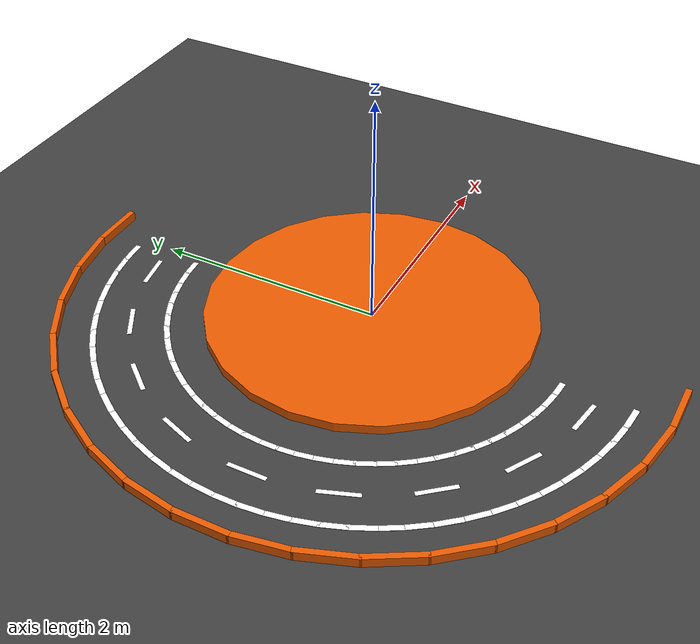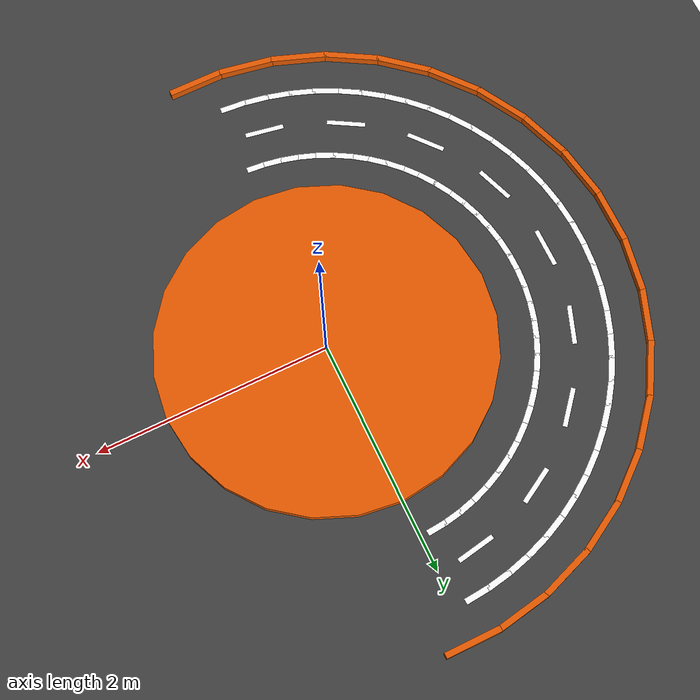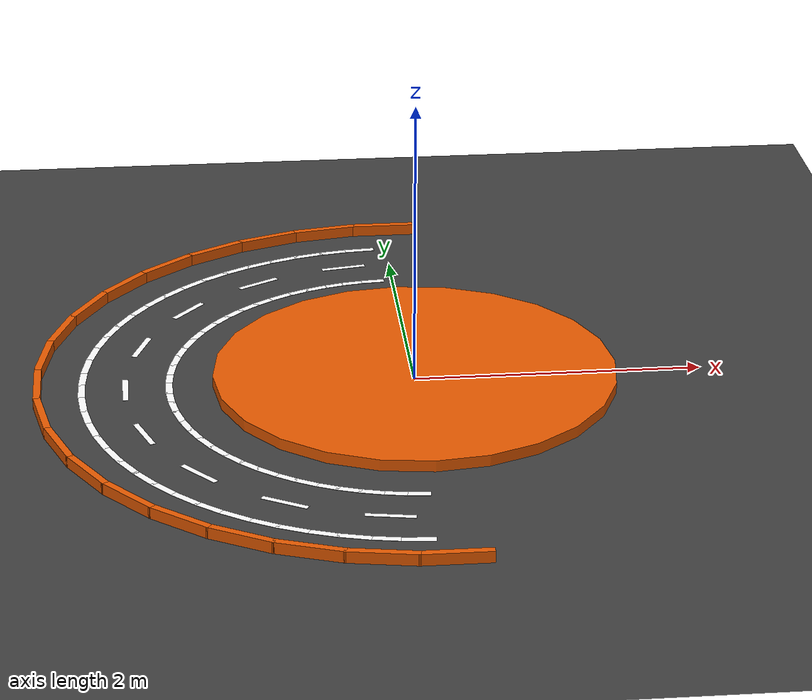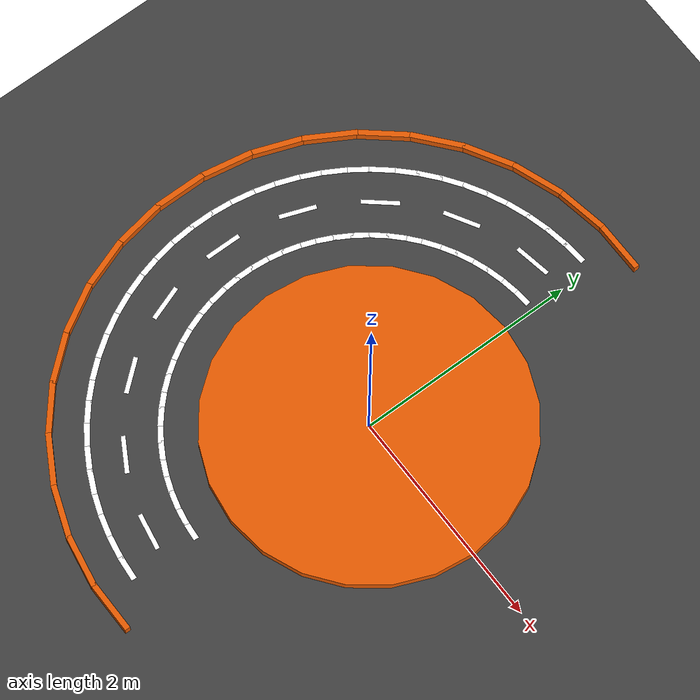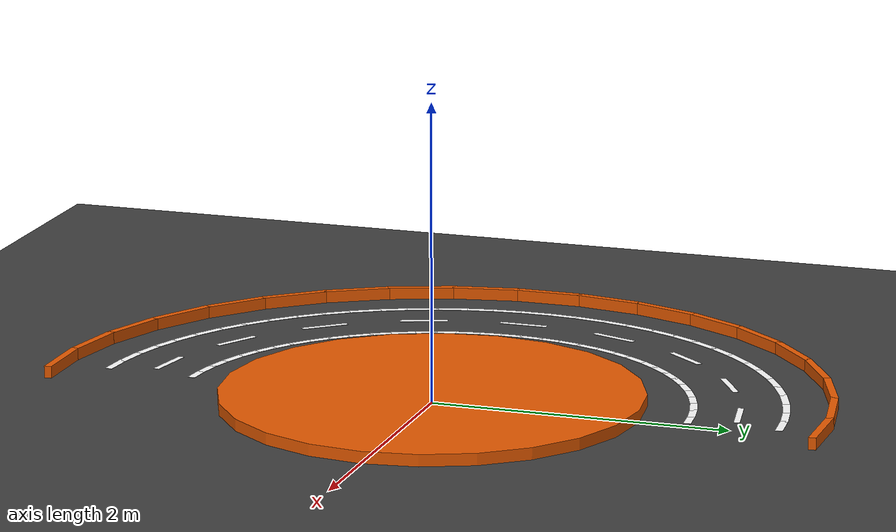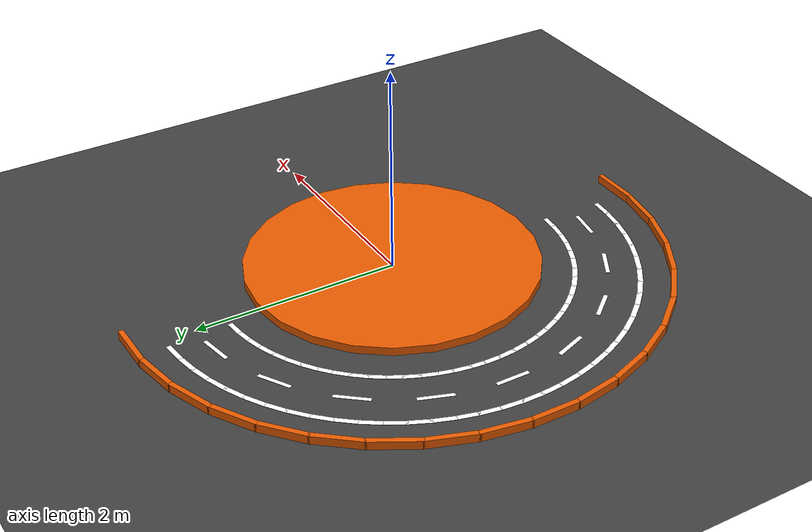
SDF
<sdf version="1.6">
 <world name="qcar_track">
  <model name="ground_plane">
   <static>true</static>
   <link name="link">
    <collision name="collision">
     <geometry><plane><normal>0 0 1</normal><size>100 100</size></plane></geometry>
    </collision>
    <visual name="visual">
     <geometry><plane><normal>0 0 1</normal><size>100 100</size></plane></geometry>
     <material>
      <ambient>0.25 0.25 0.25 1</ambient>
      <diffuse>0.25 0.25 0.25 1</diffuse>
      <specular>0.05 0.05 0.05 1</specular>
     </material>
    </visual>
   </link>
  </model>
  <model name="inner_obstacle">
   <static>true</static>
   <pose>0 0 0.04 0 0 0</pose>
   <link name="link">
    <collision name="c">
     <geometry><cylinder><radius>1.4</radius><length>0.08</length></cylinder></geometry>
    </collision>
    <visual name="v">
     <geometry><cylinder><radius>1.4</radius><length>0.08</length></cylinder></geometry>
     <material><ambient>0.9 0.35 0.0 1</ambient><diffuse>0.9 0.35 0.0 1</diffuse></material>
    </visual>
   </link>
  </model>
  <model name="outer_09">
   <static>true</static>
   <pose>0.0000 2.6000 0.0400 0 0 1.5708</pose>
   <link name="link">
    <collision name="c"><geometry><box><size>0.05 0.477 0.08</size></box></geometry></collision>
    <visual name="v">
     <geometry><box><size>0.05 0.474 0.08</size></box></geometry>
     <material><ambient>0.9 0.35 0.0 1</ambient><diffuse>0.9 0.35 0.0 1</diffuse></material>
    </visual>
   </link>
  </model>
  <model name="outer_10">
   <static>true</static>
   <pose>-0.4515 2.5605 0.0400 0 0 1.7453</pose>
   <link name="link">
    <collision name="c"><geometry><box><size>0.05 0.477 0.08</size></box></geometry></collision>
    <visual name="v">
     <geometry><box><size>0.05 0.474 0.08</size></box></geometry>
     <material><ambient>0.9 0.35 0.0 1</ambient><diffuse>0.9 0.35 0.0 1</diffuse></material>
    </visual>
   </link>
  </model>
  <model name="outer_11">
   <static>true</static>
   <pose>-0.8893 2.4432 0.0400 0 0 1.9199</pose>
   <link name="link">
    <collision name="c"><geometry><box><size>0.05 0.477 0.08</size></box></geometry></collision>
    <visual name="v">
     <geometry><box><size>0.05 0.474 0.08</size></box></geometry>
     <material><ambient>0.9 0.35 0.0 1</ambient><diffuse>0.9 0.35 0.0 1</diffuse></material>
    </visual>
   </link>
  </model>
  <model name="outer_12">
   <static>true</static>
   <pose>-1.3000 2.2517 0.0400 0 0 2.0944</pose>
   <link name="link">
    <collision name="c"><geometry><box><size>0.05 0.477 0.08</size></box></geometry></collision>
    <visual name="v">
     <geometry><box><size>0.05 0.474 0.08</size></box></geometry>
     <material><ambient>0.9 0.35 0.0 1</ambient><diffuse>0.9 0.35 0.0 1</diffuse></material>
    </visual>
   </link>
  </model>
  <model name="outer_13">
   <static>true</static>
   <pose>-1.6712 1.9917 0.0400 0 0 2.2689</pose>
   <link name="link">
    <collision name="c"><geometry><box><size>0.05 0.477 0.08</size></box></geometry></collision>
    <visual name="v">
     <geometry><box><size>0.05 0.474 0.08</size></box></geometry>
     <material><ambient>0.9 0.35 0.0 1</ambient><diffuse>0.9 0.35 0.0 1</diffuse></material>
    </visual>
   </link>
  </model>
  <model name="outer_14">
   <static>true</static>
   <pose>-1.9917 1.6712 0.0400 0 0 2.4435</pose>
   <link name="link">
    <collision name="c"><geometry><box><size>0.05 0.477 0.08</size></box></geometry></collision>
    <visual name="v">
     <geometry><box><size>0.05 0.474 0.08</size></box></geometry>
     <material><ambient>0.9 0.35 0.0 1</ambient><diffuse>0.9 0.35 0.0 1</diffuse></material>
    </visual>
   </link>
  </model>
  <model name="outer_15">
   <static>true</static>
   <pose>-2.2517 1.3000 0.0400 0 0 2.6180</pose>
   <link name="link">
    <collision name="c"><geometry><box><size>0.05 0.477 0.08</size></box></geometry></collision>
    <visual name="v">
     <geometry><box><size>0.05 0.474 0.08</size></box></geometry>
     <material><ambient>0.9 0.35 0.0 1</ambient><diffuse>0.9 0.35 0.0 1</diffuse></material>
    </visual>
   </link>
  </model>
  <model name="outer_16">
   <static>true</static>
   <pose>-2.4432 0.8893 0.0400 0 0 2.7925</pose>
   <link name="link">
    <collision name="c"><geometry><box><size>0.05 0.477 0.08</size></box></geometry></collision>
    <visual name="v">
     <geometry><box><size>0.05 0.474 0.08</size></box></geometry>
     <material><ambient>0.9 0.35 0.0 1</ambient><diffuse>0.9 0.35 0.0 1</diffuse></material>
    </visual>
   </link>
  </model>
  <model name="outer_17">
   <static>true</static>
   <pose>-2.5605 0.4515 0.0400 0 0 2.9671</pose>
   <link name="link">
    <collision name="c"><geometry><box><size>0.05 0.477 0.08</size></box></geometry></collision>
    <visual name="v">
     <geometry><box><size>0.05 0.474 0.08</size></box></geometry>
     <material><ambient>0.9 0.35 0.0 1</ambient><diffuse>0.9 0.35 0.0 1</diffuse></material>
    </visual>
   </link>
  </model>
  <model name="outer_18">
   <static>true</static>
   <pose>-2.6000 0.0000 0.0400 0 0 3.1416</pose>
   <link name="link">
    <collision name="c"><geometry><box><size>0.05 0.477 0.08</size></box></geometry></collision>
    <visual name="v">
     <geometry><box><size>0.05 0.474 0.08</size></box></geometry>
     <material><ambient>0.9 0.35 0.0 1</ambient><diffuse>0.9 0.35 0.0 1</diffuse></material>
    </visual>
   </link>
  </model>
  <model name="outer_19">
   <static>true</static>
   <pose>-2.5605 -0.4515 0.0400 0 0 3.3161</pose>
   <link name="link">
    <collision name="c"><geometry><box><size>0.05 0.477 0.08</size></box></geometry></collision>
    <visual name="v">
     <geometry><box><size>0.05 0.474 0.08</size></box></geometry>
     <material><ambient>0.9 0.35 0.0 1</ambient><diffuse>0.9 0.35 0.0 1</diffuse></material>
    </visual>
   </link>
  </model>
  <model name="outer_20">
   <static>true</static>
   <pose>-2.4432 -0.8893 0.0400 0 0 3.4907</pose>
   <link name="link">
    <collision name="c"><geometry><box><size>0.05 0.477 0.08</size></box></geometry></collision>
    <visual name="v">
     <geometry><box><size>0.05 0.474 0.08</size></box></geometry>
     <material><ambient>0.9 0.35 0.0 1</ambient><diffuse>0.9 0.35 0.0 1</diffuse></material>
    </visual>
   </link>
  </model>
  <model name="outer_21">
   <static>true</static>
   <pose>-2.2517 -1.3000 0.0400 0 0 3.6652</pose>
   <link name="link">
    <collision name="c"><geometry><box><size>0.05 0.477 0.08</size></box></geometry></collision>
    <visual name="v">
     <geometry><box><size>0.05 0.474 0.08</size></box></geometry>
     <material><ambient>0.9 0.35 0.0 1</ambient><diffuse>0.9 0.35 0.0 1</diffuse></material>
    </visual>
   </link>
  </model>
  <model name="outer_22">
   <static>true</static>
   <pose>-1.9917 -1.6712 0.0400 0 0 3.8397</pose>
   <link name="link">
    <collision name="c"><geometry><box><size>0.05 0.477 0.08</size></box></geometry></collision>
    <visual name="v">
     <geometry><box><size>0.05 0.474 0.08</size></box></geometry>
     <material><ambient>0.9 0.35 0.0 1</ambient><diffuse>0.9 0.35 0.0 1</diffuse></material>
    </visual>
   </link>
  </model>
  <model name="outer_23">
   <static>true</static>
   <pose>-1.6712 -1.9917 0.0400 0 0 4.0143</pose>
   <link name="link">
    <collision name="c"><geometry><box><size>0.05 0.477 0.08</size></box></geometry></collision>
    <visual name="v">
     <geometry><box><size>0.05 0.474 0.08</size></box></geometry>
     <material><ambient>0.9 0.35 0.0 1</ambient><diffuse>0.9 0.35 0.0 1</diffuse></material>
    </visual>
   </link>
  </model>
  <model name="outer_24">
   <static>true</static>
   <pose>-1.3000 -2.2517 0.0400 0 0 4.1888</pose>
   <link name="link">
    <collision name="c"><geometry><box><size>0.05 0.477 0.08</size></box></geometry></collision>
    <visual name="v">
     <geometry><box><size>0.05 0.474 0.08</size></box></geometry>
     <material><ambient>0.9 0.35 0.0 1</ambient><diffuse>0.9 0.35 0.0 1</diffuse></material>
    </visual>
   </link>
  </model>
  <model name="outer_25">
   <static>true</static>
   <pose>-0.8893 -2.4432 0.0400 0 0 4.3633</pose>
   <link name="link">
    <collision name="c"><geometry><box><size>0.05 0.477 0.08</size></box></geometry></collision>
    <visual name="v">
     <geometry><box><size>0.05 0.474 0.08</size></box></geometry>
     <material><ambient>0.9 0.35 0.0 1</ambient><diffuse>0.9 0.35 0.0 1</diffuse></material>
    </visual>
   </link>
  </model>
  <model name="outer_26">
   <static>true</static>
   <pose>-0.4515 -2.5605 0.0400 0 0 4.5379</pose>
   <link name="link">
    <collision name="c"><geometry><box><size>0.05 0.477 0.08</size></box></geometry></collision>
    <visual name="v">
     <geometry><box><size>0.05 0.474 0.08</size></box></geometry>
     <material><ambient>0.9 0.35 0.0 1</ambient><diffuse>0.9 0.35 0.0 1</diffuse></material>
    </visual>
   </link>
  </model>
  <model name="outer_27">
   <static>true</static>
   <pose>-0.0000 -2.6000 0.0400 0 0 4.7124</pose>
   <link name="link">
    <collision name="c"><geometry><box><size>0.05 0.477 0.08</size></box></geometry></collision>
    <visual name="v">
     <geometry><box><size>0.05 0.474 0.08</size></box></geometry>
     <material><ambient>0.9 0.35 0.0 1</ambient><diffuse>0.9 0.35 0.0 1</diffuse></material>
    </visual>
   </link>
  </model>
  <model name="left_line_19">
   <static>true</static>
   <pose>-0.1482 1.6935 0.0020 0 0 1.6581</pose>
   <link name="link">
    <visual name="v">
     <geometry><box><size>0.05 0.168 0.002</size></box></geometry>
     <material><ambient>1 1 1 1</ambient><diffuse>1 1 1 1</diffuse></material>
    </visual>
   </link>
  </model>
  <model name="left_line_20">
   <static>true</static>
   <pose>-0.2952 1.6742 0.0020 0 0 1.7453</pose>
   <link name="link">
    <visual name="v">
     <geometry><box><size>0.05 0.168 0.002</size></box></geometry>
     <material><ambient>1 1 1 1</ambient><diffuse>1 1 1 1</diffuse></material>
    </visual>
   </link>
  </model>
  <model name="left_line_21">
   <static>true</static>
   <pose>-0.4400 1.6421 0.0020 0 0 1.8326</pose>
   <link name="link">
    <visual name="v">
     <geometry><box><size>0.05 0.168 0.002</size></box></geometry>
     <material><ambient>1 1 1 1</ambient><diffuse>1 1 1 1</diffuse></material>
    </visual>
   </link>
  </model>
  <model name="left_line_22">
   <static>true</static>
   <pose>-0.5814 1.5975 0.0020 0 0 1.9199</pose>
   <link name="link">
    <visual name="v">
     <geometry><box><size>0.05 0.168 0.002</size></box></geometry>
     <material><ambient>1 1 1 1</ambient><diffuse>1 1 1 1</diffuse></material>
    </visual>
   </link>
  </model>
  <model name="left_line_23">
   <static>true</static>
   <pose>-0.7185 1.5407 0.0020 0 0 2.0071</pose>
   <link name="link">
    <visual name="v">
     <geometry><box><size>0.05 0.168 0.002</size></box></geometry>
     <material><ambient>1 1 1 1</ambient><diffuse>1 1 1 1</diffuse></material>
    </visual>
   </link>
  </model>
  <model name="left_line_24">
   <static>true</static>
   <pose>-0.8500 1.4722 0.0020 0 0 2.0944</pose>
   <link name="link">
    <visual name="v">
     <geometry><box><size>0.05 0.168 0.002</size></box></geometry>
     <material><ambient>1 1 1 1</ambient><diffuse>1 1 1 1</diffuse></material>
    </visual>
   </link>
  </model>
  <model name="left_line_25">
   <static>true</static>
   <pose>-0.9751 1.3926 0.0020 0 0 2.1817</pose>
   <link name="link">
    <visual name="v">
     <geometry><box><size>0.05 0.168 0.002</size></box></geometry>
     <material><ambient>1 1 1 1</ambient><diffuse>1 1 1 1</diffuse></material>
    </visual>
   </link>
  </model>
  <model name="left_line_26">
   <static>true</static>
   <pose>-1.0927 1.3023 0.0020 0 0 2.2689</pose>
   <link name="link">
    <visual name="v">
     <geometry><box><size>0.05 0.168 0.002</size></box></geometry>
     <material><ambient>1 1 1 1</ambient><diffuse>1 1 1 1</diffuse></material>
    </visual>
   </link>
  </model>
  <model name="left_line_27">
   <static>true</static>
   <pose>-1.2021 1.2021 0.0020 0 0 2.3562</pose>
   <link name="link">
    <visual name="v">
     <geometry><box><size>0.05 0.168 0.002</size></box></geometry>
     <material><ambient>1 1 1 1</ambient><diffuse>1 1 1 1</diffuse></material>
    </visual>
   </link>
  </model>
  <model name="left_line_28">
   <static>true</static>
   <pose>-1.3023 1.0927 0.0020 0 0 2.4435</pose>
   <link name="link">
    <visual name="v">
     <geometry><box><size>0.05 0.168 0.002</size></box></geometry>
     <material><ambient>1 1 1 1</ambient><diffuse>1 1 1 1</diffuse></material>
    </visual>
   </link>
  </model>
  <model name="left_line_29">
   <static>true</static>
   <pose>-1.3926 0.9751 0.0020 0 0 2.5307</pose>
   <link name="link">
    <visual name="v">
     <geometry><box><size>0.05 0.168 0.002</size></box></geometry>
     <material><ambient>1 1 1 1</ambient><diffuse>1 1 1 1</diffuse></material>
    </visual>
   </link>
  </model>
  <model name="left_line_30">
   <static>true</static>
   <pose>-1.4722 0.8500 0.0020 0 0 2.6180</pose>
   <link name="link">
    <visual name="v">
     <geometry><box><size>0.05 0.168 0.002</size></box></geometry>
     <material><ambient>1 1 1 1</ambient><diffuse>1 1 1 1</diffuse></material>
    </visual>
   </link>
  </model>
  <model name="left_line_31">
   <static>true</static>
   <pose>-1.5407 0.7185 0.0020 0 0 2.7053</pose>
   <link name="link">
    <visual name="v">
     <geometry><box><size>0.05 0.168 0.002</size></box></geometry>
     <material><ambient>1 1 1 1</ambient><diffuse>1 1 1 1</diffuse></material>
    </visual>
   </link>
  </model>
  <model name="left_line_32">
   <static>true</static>
   <pose>-1.5975 0.5814 0.0020 0 0 2.7925</pose>
   <link name="link">
    <visual name="v">
     <geometry><box><size>0.05 0.168 0.002</size></box></geometry>
     <material><ambient>1 1 1 1</ambient><diffuse>1 1 1 1</diffuse></material>
    </visual>
   </link>
  </model>
  <model name="left_line_33">
   <static>true</static>
   <pose>-1.6421 0.4400 0.0020 0 0 2.8798</pose>
   <link name="link">
    <visual name="v">
     <geometry><box><size>0.05 0.168 0.002</size></box></geometry>
     <material><ambient>1 1 1 1</ambient><diffuse>1 1 1 1</diffuse></material>
    </visual>
   </link>
  </model>
  <model name="left_line_34">
   <static>true</static>
   <pose>-1.6742 0.2952 0.0020 0 0 2.9671</pose>
   <link name="link">
    <visual name="v">
     <geometry><box><size>0.05 0.168 0.002</size></box></geometry>
     <material><ambient>1 1 1 1</ambient><diffuse>1 1 1 1</diffuse></material>
    </visual>
   </link>
  </model>
  <model name="left_line_35">
   <static>true</static>
   <pose>-1.6935 0.1482 0.0020 0 0 3.0543</pose>
   <link name="link">
    <visual name="v">
     <geometry><box><size>0.05 0.168 0.002</size></box></geometry>
     <material><ambient>1 1 1 1</ambient><diffuse>1 1 1 1</diffuse></material>
    </visual>
   </link>
  </model>
  <model name="left_line_36">
   <static>true</static>
   <pose>-1.7000 0.0000 0.0020 0 0 3.1416</pose>
   <link name="link">
    <visual name="v">
     <geometry><box><size>0.05 0.168 0.002</size></box></geometry>
     <material><ambient>1 1 1 1</ambient><diffuse>1 1 1 1</diffuse></material>
    </visual>
   </link>
  </model>
  <model name="left_line_37">
   <static>true</static>
   <pose>-1.6935 -0.1482 0.0020 0 0 3.2289</pose>
   <link name="link">
    <visual name="v">
     <geometry><box><size>0.05 0.168 0.002</size></box></geometry>
     <material><ambient>1 1 1 1</ambient><diffuse>1 1 1 1</diffuse></material>
    </visual>
   </link>
  </model>
  <model name="left_line_38">
   <static>true</static>
   <pose>-1.6742 -0.2952 0.0020 0 0 3.3161</pose>
   <link name="link">
    <visual name="v">
     <geometry><box><size>0.05 0.168 0.002</size></box></geometry>
     <material><ambient>1 1 1 1</ambient><diffuse>1 1 1 1</diffuse></material>
    </visual>
   </link>
  </model>
  <model name="left_line_39">
   <static>true</static>
   <pose>-1.6421 -0.4400 0.0020 0 0 3.4034</pose>
   <link name="link">
    <visual name="v">
     <geometry><box><size>0.05 0.168 0.002</size></box></geometry>
     <material><ambient>1 1 1 1</ambient><diffuse>1 1 1 1</diffuse></material>
    </visual>
   </link>
  </model>
  <model name="left_line_40">
   <static>true</static>
   <pose>-1.5975 -0.5814 0.0020 0 0 3.4907</pose>
   <link name="link">
    <visual name="v">
     <geometry><box><size>0.05 0.168 0.002</size></box></geometry>
     <material><ambient>1 1 1 1</ambient><diffuse>1 1 1 1</diffuse></material>
    </visual>
   </link>
  </model>
  <model name="left_line_41">
   <static>true</static>
   <pose>-1.5407 -0.7185 0.0020 0 0 3.5779</pose>
   <link name="link">
    <visual name="v">
     <geometry><box><size>0.05 0.168 0.002</size></box></geometry>
     <material><ambient>1 1 1 1</ambient><diffuse>1 1 1 1</diffuse></material>
    </visual>
   </link>
  </model>
  <model name="left_line_42">
   <static>true</static>
   <pose>-1.4722 -0.8500 0.0020 0 0 3.6652</pose>
   <link name="link">
    <visual name="v">
     <geometry><box><size>0.05 0.168 0.002</size></box></geometry>
     <material><ambient>1 1 1 1</ambient><diffuse>1 1 1 1</diffuse></material>
    </visual>
   </link>
  </model>
  <model name="left_line_43">
   <static>true</static>
   <pose>-1.3926 -0.9751 0.0020 0 0 3.7525</pose>
   <link name="link">
    <visual name="v">
     <geometry><box><size>0.05 0.168 0.002</size></box></geometry>
     <material><ambient>1 1 1 1</ambient><diffuse>1 1 1 1</diffuse></material>
    </visual>
   </link>
  </model>
  <model name="left_line_44">
   <static>true</static>
   <pose>-1.3023 -1.0927 0.0020 0 0 3.8397</pose>
   <link name="link">
    <visual name="v">
     <geometry><box><size>0.05 0.168 0.002</size></box></geometry>
     <material><ambient>1 1 1 1</ambient><diffuse>1 1 1 1</diffuse></material>
    </visual>
   </link>
  </model>
  <model name="left_line_45">
   <static>true</static>
   <pose>-1.2021 -1.2021 0.0020 0 0 3.9270</pose>
   <link name="link">
    <visual name="v">
     <geometry><box><size>0.05 0.168 0.002</size></box></geometry>
     <material><ambient>1 1 1 1</ambient><diffuse>1 1 1 1</diffuse></material>
    </visual>
   </link>
  </model>
  <model name="left_line_46">
   <static>true</static>
   <pose>-1.0927 -1.3023 0.0020 0 0 4.0143</pose>
   <link name="link">
    <visual name="v">
     <geometry><box><size>0.05 0.168 0.002</size></box></geometry>
     <material><ambient>1 1 1 1</ambient><diffuse>1 1 1 1</diffuse></material>
    </visual>
   </link>
  </model>
  <model name="left_line_47">
   <static>true</static>
   <pose>-0.9751 -1.3926 0.0020 0 0 4.1015</pose>
   <link name="link">
    <visual name="v">
     <geometry><box><size>0.05 0.168 0.002</size></box></geometry>
     <material><ambient>1 1 1 1</ambient><diffuse>1 1 1 1</diffuse></material>
    </visual>
   </link>
  </model>
  <model name="left_line_48">
   <static>true</static>
   <pose>-0.8500 -1.4722 0.0020 0 0 4.1888</pose>
   <link name="link">
    <visual name="v">
     <geometry><box><size>0.05 0.168 0.002</size></box></geometry>
     <material><ambient>1 1 1 1</ambient><diffuse>1 1 1 1</diffuse></material>
    </visual>
   </link>
  </model>
  <model name="left_line_49">
   <static>true</static>
   <pose>-0.7185 -1.5407 0.0020 0 0 4.2761</pose>
   <link name="link">
    <visual name="v">
     <geometry><box><size>0.05 0.168 0.002</size></box></geometry>
     <material><ambient>1 1 1 1</ambient><diffuse>1 1 1 1</diffuse></material>
    </visual>
   </link>
  </model>
  <model name="left_line_50">
   <static>true</static>
   <pose>-0.5814 -1.5975 0.0020 0 0 4.3633</pose>
   <link name="link">
    <visual name="v">
     <geometry><box><size>0.05 0.168 0.002</size></box></geometry>
     <material><ambient>1 1 1 1</ambient><diffuse>1 1 1 1</diffuse></material>
    </visual>
   </link>
  </model>
  <model name="left_line_51">
   <static>true</static>
   <pose>-0.4400 -1.6421 0.0020 0 0 4.4506</pose>
   <link name="link">
    <visual name="v">
     <geometry><box><size>0.05 0.168 0.002</size></box></geometry>
     <material><ambient>1 1 1 1</ambient><diffuse>1 1 1 1</diffuse></material>
    </visual>
   </link>
  </model>
  <model name="left_line_52">
   <static>true</static>
   <pose>-0.2952 -1.6742 0.0020 0 0 4.5379</pose>
   <link name="link">
    <visual name="v">
     <geometry><box><size>0.05 0.168 0.002</size></box></geometry>
     <material><ambient>1 1 1 1</ambient><diffuse>1 1 1 1</diffuse></material>
    </visual>
   </link>
  </model>
  <model name="left_line_53">
   <static>true</static>
   <pose>-0.1482 -1.6935 0.0020 0 0 4.6251</pose>
   <link name="link">
    <visual name="v">
     <geometry><box><size>0.05 0.168 0.002</size></box></geometry>
     <material><ambient>1 1 1 1</ambient><diffuse>1 1 1 1</diffuse></material>
    </visual>
   </link>
  </model>
  <model name="right_line_19">
   <static>true</static>
   <pose>-0.2005 2.2912 0.0020 0 0 1.6581</pose>
   <link name="link">
    <visual name="v">
     <geometry><box><size>0.05 0.221 0.002</size></box></geometry>
     <material><ambient>1 1 1 1</ambient><diffuse>1 1 1 1</diffuse></material>
    </visual>
   </link>
  </model>
  <model name="right_line_20">
   <static>true</static>
   <pose>-0.3994 2.2651 0.0020 0 0 1.7453</pose>
   <link name="link">
    <visual name="v">
     <geometry><box><size>0.05 0.221 0.002</size></box></geometry>
     <material><ambient>1 1 1 1</ambient><diffuse>1 1 1 1</diffuse></material>
    </visual>
   </link>
  </model>
  <model name="right_line_21">
   <static>true</static>
   <pose>-0.5953 2.2216 0.0020 0 0 1.8326</pose>
   <link name="link">
    <visual name="v">
     <geometry><box><size>0.05 0.221 0.002</size></box></geometry>
     <material><ambient>1 1 1 1</ambient><diffuse>1 1 1 1</diffuse></material>
    </visual>
   </link>
  </model>
  <model name="right_line_22">
   <static>true</static>
   <pose>-0.7866 2.1613 0.0020 0 0 1.9199</pose>
   <link name="link">
    <visual name="v">
     <geometry><box><size>0.05 0.221 0.002</size></box></geometry>
     <material><ambient>1 1 1 1</ambient><diffuse>1 1 1 1</diffuse></material>
    </visual>
   </link>
  </model>
  <model name="right_line_23">
   <static>true</static>
   <pose>-0.9720 2.0845 0.0020 0 0 2.0071</pose>
   <link name="link">
    <visual name="v">
     <geometry><box><size>0.05 0.221 0.002</size></box></geometry>
     <material><ambient>1 1 1 1</ambient><diffuse>1 1 1 1</diffuse></material>
    </visual>
   </link>
  </model>
  <model name="right_line_24">
   <static>true</static>
   <pose>-1.1500 1.9919 0.0020 0 0 2.0944</pose>
   <link name="link">
    <visual name="v">
     <geometry><box><size>0.05 0.221 0.002</size></box></geometry>
     <material><ambient>1 1 1 1</ambient><diffuse>1 1 1 1</diffuse></material>
    </visual>
   </link>
  </model>
  <model name="right_line_25">
   <static>true</static>
   <pose>-1.3192 1.8840 0.0020 0 0 2.1817</pose>
   <link name="link">
    <visual name="v">
     <geometry><box><size>0.05 0.221 0.002</size></box></geometry>
     <material><ambient>1 1 1 1</ambient><diffuse>1 1 1 1</diffuse></material>
    </visual>
   </link>
  </model>
  <model name="right_line_26">
   <static>true</static>
   <pose>-1.4784 1.7619 0.0020 0 0 2.2689</pose>
   <link name="link">
    <visual name="v">
     <geometry><box><size>0.05 0.221 0.002</size></box></geometry>
     <material><ambient>1 1 1 1</ambient><diffuse>1 1 1 1</diffuse></material>
    </visual>
   </link>
  </model>
  <model name="right_line_27">
   <static>true</static>
   <pose>-1.6263 1.6263 0.0020 0 0 2.3562</pose>
   <link name="link">
    <visual name="v">
     <geometry><box><size>0.05 0.221 0.002</size></box></geometry>
     <material><ambient>1 1 1 1</ambient><diffuse>1 1 1 1</diffuse></material>
    </visual>
   </link>
  </model>
  <model name="right_line_28">
   <static>true</static>
   <pose>-1.7619 1.4784 0.0020 0 0 2.4435</pose>
   <link name="link">
    <visual name="v">
     <geometry><box><size>0.05 0.221 0.002</size></box></geometry>
     <material><ambient>1 1 1 1</ambient><diffuse>1 1 1 1</diffuse></material>
    </visual>
   </link>
  </model>
  <model name="right_line_29">
   <static>true</static>
   <pose>-1.8840 1.3192 0.0020 0 0 2.5307</pose>
   <link name="link">
    <visual name="v">
     <geometry><box><size>0.05 0.221 0.002</size></box></geometry>
     <material><ambient>1 1 1 1</ambient><diffuse>1 1 1 1</diffuse></material>
    </visual>
   </link>
  </model>
  <model name="right_line_30">
   <static>true</static>
   <pose>-1.9919 1.1500 0.0020 0 0 2.6180</pose>
   <link name="link">
    <visual name="v">
     <geometry><box><size>0.05 0.221 0.002</size></box></geometry>
     <material><ambient>1 1 1 1</ambient><diffuse>1 1 1 1</diffuse></material>
    </visual>
   </link>
  </model>
  <model name="right_line_31">
   <static>true</static>
   <pose>-2.0845 0.9720 0.0020 0 0 2.7053</pose>
   <link name="link">
    <visual name="v">
     <geometry><box><size>0.05 0.221 0.002</size></box></geometry>
     <material><ambient>1 1 1 1</ambient><diffuse>1 1 1 1</diffuse></material>
    </visual>
   </link>
  </model>
  <model name="right_line_32">
   <static>true</static>
   <pose>-2.1613 0.7866 0.0020 0 0 2.7925</pose>
   <link name="link">
    <visual name="v">
     <geometry><box><size>0.05 0.221 0.002</size></box></geometry>
     <material><ambient>1 1 1 1</ambient><diffuse>1 1 1 1</diffuse></material>
    </visual>
   </link>
  </model>
  <model name="right_line_33">
   <static>true</static>
   <pose>-2.2216 0.5953 0.0020 0 0 2.8798</pose>
   <link name="link">
    <visual name="v">
     <geometry><box><size>0.05 0.221 0.002</size></box></geometry>
     <material><ambient>1 1 1 1</ambient><diffuse>1 1 1 1</diffuse></material>
    </visual>
   </link>
  </model>
  <model name="right_line_34">
   <static>true</static>
   <pose>-2.2651 0.3994 0.0020 0 0 2.9671</pose>
   <link name="link">
    <visual name="v">
     <geometry><box><size>0.05 0.221 0.002</size></box></geometry>
     <material><ambient>1 1 1 1</ambient><diffuse>1 1 1 1</diffuse></material>
    </visual>
   </link>
  </model>
  <model name="right_line_35">
   <static>true</static>
   <pose>-2.2912 0.2005 0.0020 0 0 3.0543</pose>
   <link name="link">
    <visual name="v">
     <geometry><box><size>0.05 0.221 0.002</size></box></geometry>
     <material><ambient>1 1 1 1</ambient><diffuse>1 1 1 1</diffuse></material>
    </visual>
   </link>
  </model>
  <model name="right_line_36">
   <static>true</static>
   <pose>-2.3000 0.0000 0.0020 0 0 3.1416</pose>
   <link name="link">
    <visual name="v">
     <geometry><box><size>0.05 0.221 0.002</size></box></geometry>
     <material><ambient>1 1 1 1</ambient><diffuse>1 1 1 1</diffuse></material>
    </visual>
   </link>
  </model>
  <model name="right_line_37">
   <static>true</static>
   <pose>-2.2912 -0.2005 0.0020 0 0 3.2289</pose>
   <link name="link">
    <visual name="v">
     <geometry><box><size>0.05 0.221 0.002</size></box></geometry>
     <material><ambient>1 1 1 1</ambient><diffuse>1 1 1 1</diffuse></material>
    </visual>
   </link>
  </model>
  <model name="right_line_38">
   <static>true</static>
   <pose>-2.2651 -0.3994 0.0020 0 0 3.3161</pose>
   <link name="link">
    <visual name="v">
     <geometry><box><size>0.05 0.221 0.002</size></box></geometry>
     <material><ambient>1 1 1 1</ambient><diffuse>1 1 1 1</diffuse></material>
    </visual>
   </link>
  </model>
  <model name="right_line_39">
   <static>true</static>
   <pose>-2.2216 -0.5953 0.0020 0 0 3.4034</pose>
   <link name="link">
    <visual name="v">
     <geometry><box><size>0.05 0.221 0.002</size></box></geometry>
     <material><ambient>1 1 1 1</ambient><diffuse>1 1 1 1</diffuse></material>
    </visual>
   </link>
  </model>
  <model name="right_line_40">
   <static>true</static>
   <pose>-2.1613 -0.7866 0.0020 0 0 3.4907</pose>
   <link name="link">
    <visual name="v">
     <geometry><box><size>0.05 0.221 0.002</size></box></geometry>
     <material><ambient>1 1 1 1</ambient><diffuse>1 1 1 1</diffuse></material>
    </visual>
   </link>
  </model>
  <model name="right_line_41">
   <static>true</static>
   <pose>-2.0845 -0.9720 0.0020 0 0 3.5779</pose>
   <link name="link">
    <visual name="v">
     <geometry><box><size>0.05 0.221 0.002</size></box></geometry>
     <material><ambient>1 1 1 1</ambient><diffuse>1 1 1 1</diffuse></material>
    </visual>
   </link>
  </model>
  <model name="right_line_42">
   <static>true</static>
   <pose>-1.9919 -1.1500 0.0020 0 0 3.6652</pose>
   <link name="link">
    <visual name="v">
     <geometry><box><size>0.05 0.221 0.002</size></box></geometry>
     <material><ambient>1 1 1 1</ambient><diffuse>1 1 1 1</diffuse></material>
    </visual>
   </link>
  </model>
  <model name="right_line_43">
   <static>true</static>
   <pose>-1.8840 -1.3192 0.0020 0 0 3.7525</pose>
   <link name="link">
    <visual name="v">
     <geometry><box><size>0.05 0.221 0.002</size></box></geometry>
     <material><ambient>1 1 1 1</ambient><diffuse>1 1 1 1</diffuse></material>
    </visual>
   </link>
  </model>
  <model name="right_line_44">
   <static>true</static>
   <pose>-1.7619 -1.4784 0.0020 0 0 3.8397</pose>
   <link name="link">
    <visual name="v">
     <geometry><box><size>0.05 0.221 0.002</size></box></geometry>
     <material><ambient>1 1 1 1</ambient><diffuse>1 1 1 1</diffuse></material>
    </visual>
   </link>
  </model>
  <model name="right_line_45">
   <static>true</static>
   <pose>-1.6263 -1.6263 0.0020 0 0 3.9270</pose>
   <link name="link">
    <visual name="v">
     <geometry><box><size>0.05 0.221 0.002</size></box></geometry>
     <material><ambient>1 1 1 1</ambient><diffuse>1 1 1 1</diffuse></material>
    </visual>
   </link>
  </model>
  <model name="right_line_46">
   <static>true</static>
   <pose>-1.4784 -1.7619 0.0020 0 0 4.0143</pose>
   <link name="link">
    <visual name="v">
     <geometry><box><size>0.05 0.221 0.002</size></box></geometry>
     <material><ambient>1 1 1 1</ambient><diffuse>1 1 1 1</diffuse></material>
    </visual>
   </link>
  </model>
  <model name="right_line_47">
   <static>true</static>
   <pose>-1.3192 -1.8840 0.0020 0 0 4.1015</pose>
   <link name="link">
    <visual name="v">
     <geometry><box><size>0.05 0.221 0.002</size></box></geometry>
     <material><ambient>1 1 1 1</ambient><diffuse>1 1 1 1</diffuse></material>
    </visual>
   </link>
  </model>
  <model name="right_line_48">
   <static>true</static>
   <pose>-1.1500 -1.9919 0.0020 0 0 4.1888</pose>
   <link name="link">
    <visual name="v">
     <geometry><box><size>0.05 0.221 0.002</size></box></geometry>
     <material><ambient>1 1 1 1</ambient><diffuse>1 1 1 1</diffuse></material>
    </visual>
   </link>
  </model>
  <model name="right_line_49">
   <static>true</static>
   <pose>-0.9720 -2.0845 0.0020 0 0 4.2761</pose>
   <link name="link">
    <visual name="v">
     <geometry><box><size>0.05 0.221 0.002</size></box></geometry>
     <material><ambient>1 1 1 1</ambient><diffuse>1 1 1 1</diffuse></material>
    </visual>
   </link>
  </model>
  <model name="right_line_50">
   <static>true</static>
   <pose>-0.7866 -2.1613 0.0020 0 0 4.3633</pose>
   <link name="link">
    <visual name="v">
     <geometry><box><size>0.05 0.221 0.002</size></box></geometry>
     <material><ambient>1 1 1 1</ambient><diffuse>1 1 1 1</diffuse></material>
    </visual>
   </link>
  </model>
  <model name="right_line_51">
   <static>true</static>
   <pose>-0.5953 -2.2216 0.0020 0 0 4.4506</pose>
   <link name="link">
    <visual name="v">
     <geometry><box><size>0.05 0.221 0.002</size></box></geometry>
     <material><ambient>1 1 1 1</ambient><diffuse>1 1 1 1</diffuse></material>
    </visual>
   </link>
  </model>
  <model name="right_line_52">
   <static>true</static>
   <pose>-0.3994 -2.2651 0.0020 0 0 4.5379</pose>
   <link name="link">
    <visual name="v">
     <geometry><box><size>0.05 0.221 0.002</size></box></geometry>
     <material><ambient>1 1 1 1</ambient><diffuse>1 1 1 1</diffuse></material>
    </visual>
   </link>
  </model>
  <model name="right_line_53">
   <static>true</static>
   <pose>-0.2005 -2.2912 0.0020 0 0 4.6251</pose>
   <link name="link">
    <visual name="v">
     <geometry><box><size>0.05 0.221 0.002</size></box></geometry>
     <material><ambient>1 1 1 1</ambient><diffuse>1 1 1 1</diffuse></material>
    </visual>
   </link>
  </model>
  <model name="center_dash_05">
   <static>true</static>
   <pose>-0.3473 1.9696 0.0015 0 0 1.7453</pose>
   <link name="link">
    <visual name="v">
     <geometry><box><size>0.04 0.3300 0.002</size></box></geometry>
     <material><ambient>1 1 1 1</ambient><diffuse>1 1 1 1</diffuse></material>
    </visual>
   </link>
  </model>
  <model name="center_dash_06">
   <static>true</static>
   <pose>-1.0000 1.7321 0.0015 0 0 2.0944</pose>
   <link name="link">
    <visual name="v">
     <geometry><box><size>0.04 0.3300 0.002</size></box></geometry>
     <material><ambient>1 1 1 1</ambient><diffuse>1 1 1 1</diffuse></material>
    </visual>
   </link>
  </model>
  <model name="center_dash_07">
   <static>true</static>
   <pose>-1.5321 1.2856 0.0015 0 0 2.4435</pose>
   <link name="link">
    <visual name="v">
     <geometry><box><size>0.04 0.3300 0.002</size></box></geometry>
     <material><ambient>1 1 1 1</ambient><diffuse>1 1 1 1</diffuse></material>
    </visual>
   </link>
  </model>
  <model name="center_dash_08">
   <static>true</static>
   <pose>-1.8794 0.6840 0.0015 0 0 2.7925</pose>
   <link name="link">
    <visual name="v">
     <geometry><box><size>0.04 0.3300 0.002</size></box></geometry>
     <material><ambient>1 1 1 1</ambient><diffuse>1 1 1 1</diffuse></material>
    </visual>
   </link>
  </model>
  <model name="center_dash_09">
   <static>true</static>
   <pose>-2.0000 0.0000 0.0015 0 0 3.1416</pose>
   <link name="link">
    <visual name="v">
     <geometry><box><size>0.04 0.3300 0.002</size></box></geometry>
     <material><ambient>1 1 1 1</ambient><diffuse>1 1 1 1</diffuse></material>
    </visual>
   </link>
  </model>
  <model name="center_dash_10">
   <static>true</static>
   <pose>-1.8794 -0.6840 0.0015 0 0 3.4907</pose>
   <link name="link">
    <visual name="v">
     <geometry><box><size>0.04 0.3300 0.002</size></box></geometry>
     <material><ambient>1 1 1 1</ambient><diffuse>1 1 1 1</diffuse></material>
    </visual>
   </link>
  </model>
  <model name="center_dash_11">
   <static>true</static>
   <pose>-1.5321 -1.2856 0.0015 0 0 3.8397</pose>
   <link name="link">
    <visual name="v">
     <geometry><box><size>0.04 0.3300 0.002</size></box></geometry>
     <material><ambient>1 1 1 1</ambient><diffuse>1 1 1 1</diffuse></material>
    </visual>
   </link>
  </model>
  <model name="center_dash_12">
   <static>true</static>
   <pose>-1.0000 -1.7321 0.0015 0 0 4.1888</pose>
   <link name="link">
    <visual name="v">
     <geometry><box><size>0.04 0.3300 0.002</size></box></geometry>
     <material><ambient>1 1 1 1</ambient><diffuse>1 1 1 1</diffuse></material>
    </visual>
   </link>
  </model>
  <model name="center_dash_13">
   <static>true</static>
   <pose>-0.3473 -1.9696 0.0015 0 0 4.5379</pose>
   <link name="link">
    <visual name="v">
     <geometry><box><size>0.04 0.3300 0.002</size></box></geometry>
     <material><ambient>1 1 1 1</ambient><diffuse>1 1 1 1</diffuse></material>
    </visual>
   </link>
  </model>
 </world>
</sdf>
